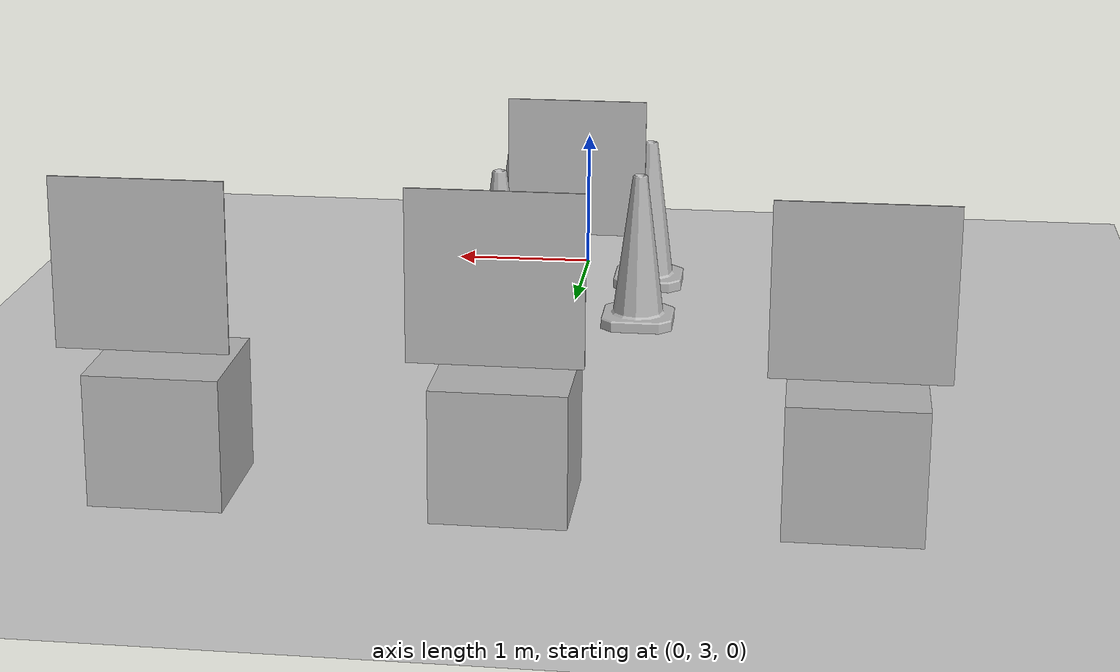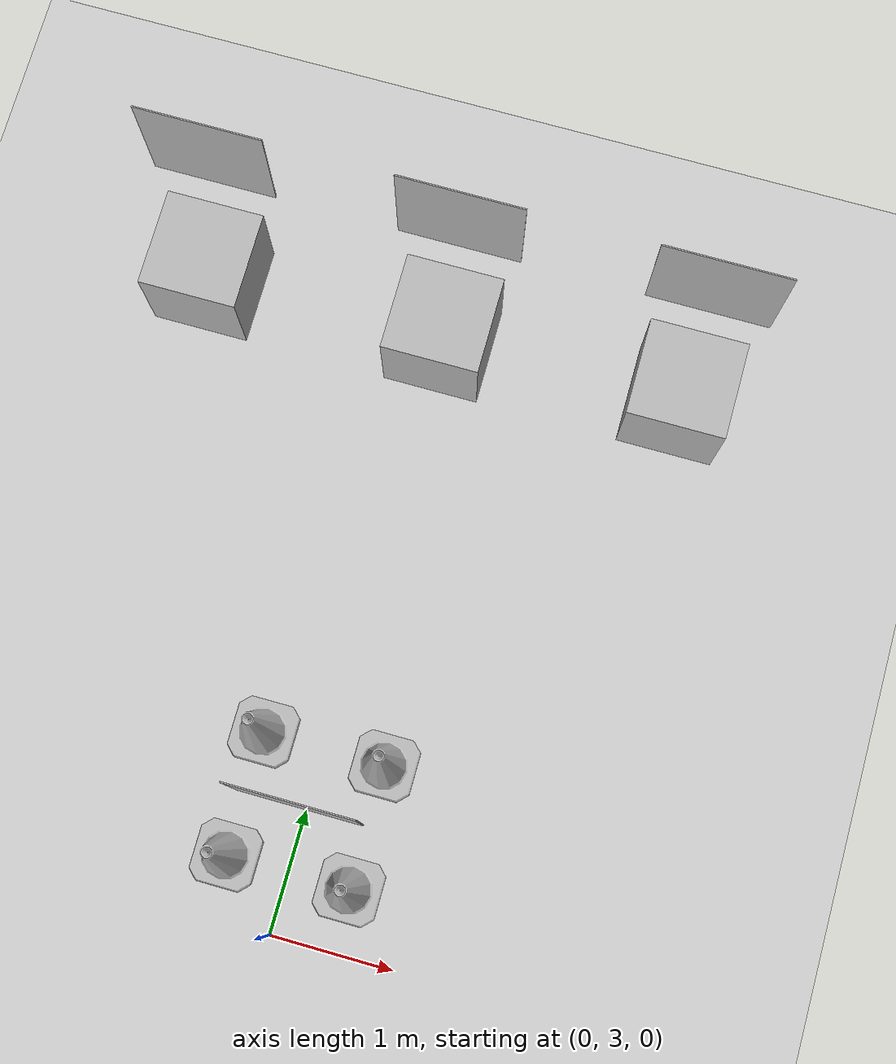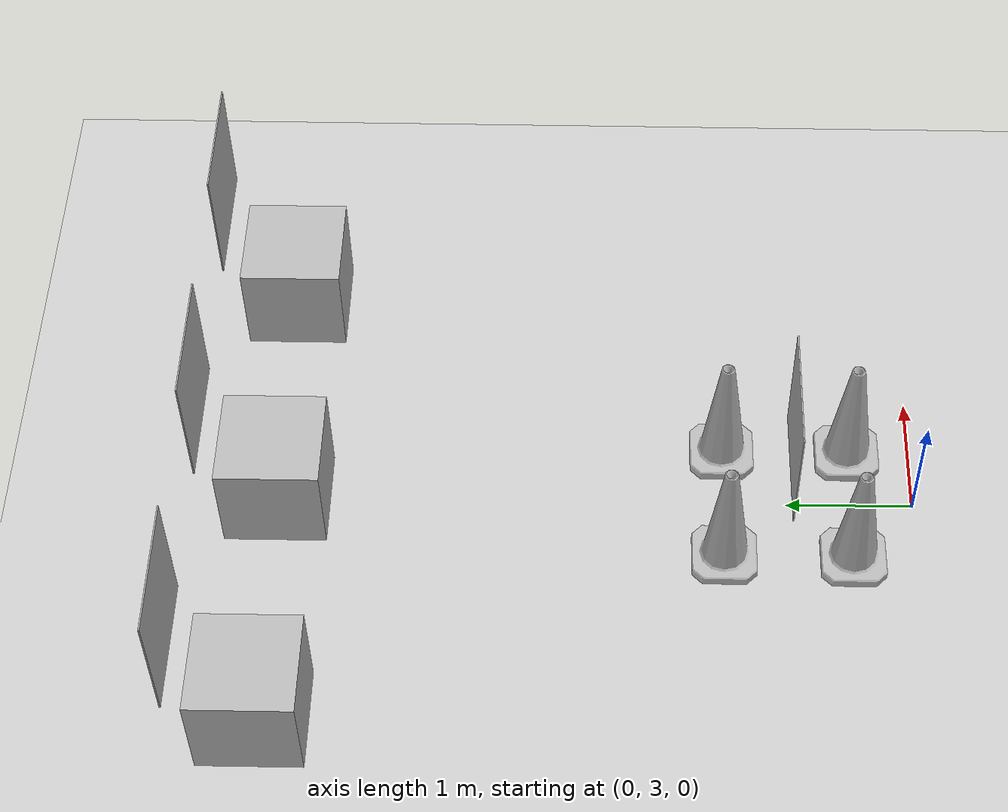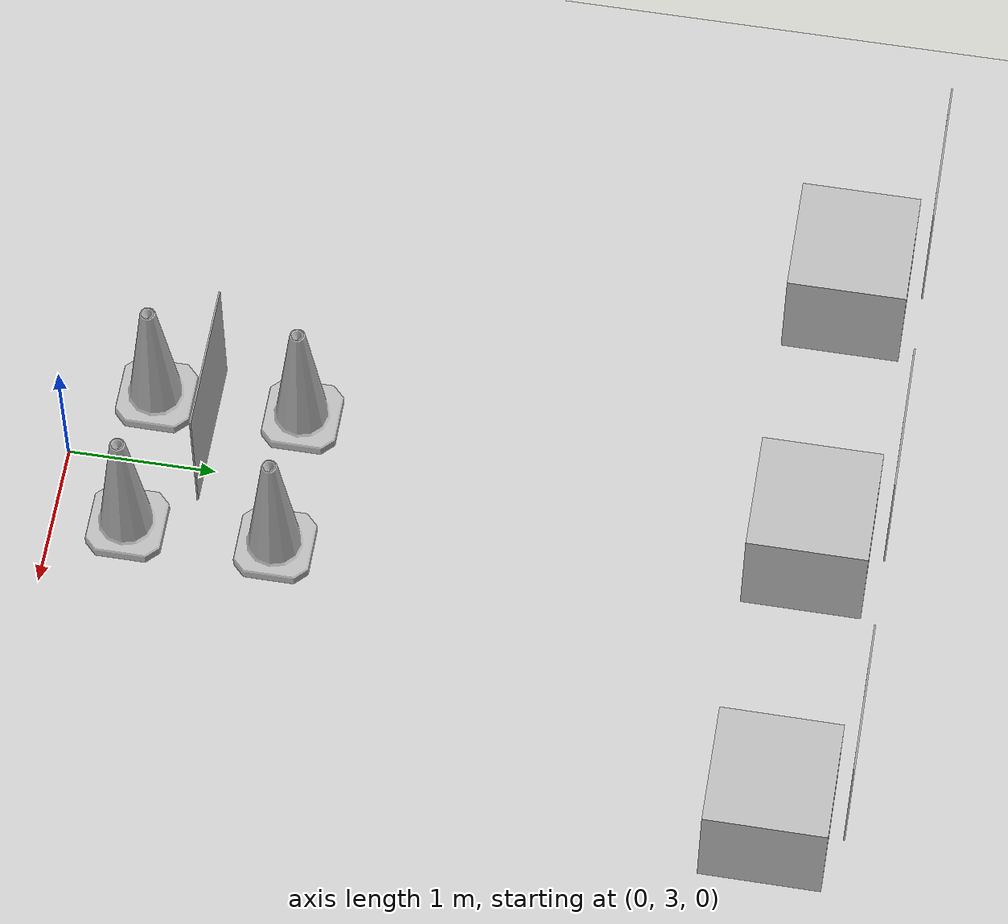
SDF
<sdf version="1.6">
 <world name="default">
  <light name="sun" type="directional">
   <pose>0 0 10 0 -0 0</pose>
   <diffuse>0.8 0.8 0.8 1</diffuse>
   <specular>0.2 0.2 0.2 1</specular>
   <attenuation>
    <range>1000</range>
    <constant>0.9</constant>
    <linear>0.01</linear>
    <quadratic>0.001</quadratic>
   </attenuation>
   <direction>-0.5 0.1 -0.9</direction>
  </light>
  <model name="ground_plane">
   <static>1</static>
   <link name="link">
    <collision name="collision">
     <geometry><plane><normal>0 0 1</normal><size>100 100</size></plane></geometry>
     <surface>
      <contact><collide_bitmask>65535</collide_bitmask></contact>
      <friction><ode><mu>100</mu><mu2>50</mu2></ode></friction>
     </surface>
    </collision>
    <visual name="visual">
     <cast_shadows>0</cast_shadows>
     <geometry><plane><normal>0 0 1</normal><size>100 100</size></plane></geometry>
     <material>
      <script><uri>file://media/materials/scripts/gazebo.material</uri><name>Gazebo/Grey</name></script>
     </material>
    </visual>
   </link>
  </model>
  <gravity>0 0 -9.8</gravity>
  <magnetic_field>6e-06 2.3e-05 -4.2e-05</magnetic_field>
  <atmosphere type="adiabatic"/>
  <physics name="default_physics" default="0" type="ode">
   <max_step_size>0.001</max_step_size>
   <real_time_factor>1</real_time_factor>
   <real_time_update_rate>1000</real_time_update_rate>
  </physics>
  <scene><ambient>0.4 0.4 0.4 1</ambient><background>0.7 0.7 0.7 1</background><shadows>1</shadows></scene>
  <audio><device>default</device></audio>
  <spherical_coordinates>
   <surface_model>EARTH_WGS84</surface_model>
   <latitude_deg>0</latitude_deg>
   <longitude_deg>0</longitude_deg>
   <elevation>0</elevation>
   <heading_deg>0</heading_deg>
  </spherical_coordinates>
  <model name="number1">
   <pose>2 8 0.4 0 -0 0</pose>
   <static>1</static>
   <link name="link">
    <visual name="visual">
     <geometry><mesh><uri>model://number1/meshes/number.dae</uri></mesh></geometry>
     <material>
      <script>
       <uri>model://number1/materials/scripts</uri>
       <uri>model://number1/materials/textures</uri>
       <name>Number/One</name>
      </script>
     </material>
    </visual>
   </link>
  </model>
  <model name="number3">
   <pose>-2 8 0.4 0 -0 0</pose>
   <static>1</static>
   <link name="link">
    <visual name="visual">
     <geometry><mesh><uri>model://number1/meshes/number.dae</uri></mesh></geometry>
     <material>
      <script>
       <uri>model://number3/materials/scripts</uri>
       <uri>model://number3/materials/textures</uri>
       <name>Number/Three</name>
      </script>
     </material>
    </visual>
   </link>
  </model>
  <model name="number2">
   <pose>0 8 0.4 0 -0 0</pose>
   <static>1</static>
   <link name="link">
    <visual name="visual">
     <geometry><mesh><uri>model://number1/meshes/number.dae</uri></mesh></geometry>
     <material>
      <script>
       <uri>model://number2/materials/scripts</uri>
       <uri>model://number2/materials/textures</uri>
       <name>Number/Two</name>
      </script>
     </material>
    </visual>
   </link>
  </model>
  <model name="Construction Cone">
   <link name="link">
    <collision name="collision">
     <geometry>
      <mesh><scale>10 10 10</scale><uri>model://construction_cone/meshes/construction_cone.dae</uri></mesh>
     </geometry>
    </collision>
    <visual name="visual">
     <geometry>
      <mesh><scale>10 10 10</scale><uri>model://construction_cone/meshes/construction_cone.dae</uri></mesh>
     </geometry>
    </visual>
    <inertial>
     <inertia><ixx>1</ixx><ixy>0</ixy><ixz>0</ixz><iyy>1</iyy><iyz>0</iyz><izz>1</izz></inertia>
     <mass>1</mass>
    </inertial>
   </link>
   <pose>0.5 4.5 -0 0 -0 0</pose>
  </model>
  <model name="Construction Cone_clone">
   <link name="link">
    <collision name="collision">
     <geometry>
      <mesh><scale>10 10 10</scale><uri>model://construction_cone/meshes/construction_cone.dae</uri></mesh>
     </geometry>
    </collision>
    <visual name="visual">
     <geometry>
      <mesh><scale>10 10 10</scale><uri>model://construction_cone/meshes/construction_cone.dae</uri></mesh>
     </geometry>
    </visual>
    <inertial>
     <inertia><ixx>1</ixx><ixy>0</ixy><ixz>0</ixz><iyy>1</iyy><iyz>0</iyz><izz>1</izz></inertia>
     <mass>1</mass>
    </inertial>
   </link>
   <pose>-0.5 4.5 -6e-06 -4e-06 0 0</pose>
  </model>
  <model name="Construction Cone_clone_0">
   <link name="link">
    <collision name="collision">
     <geometry>
      <mesh><scale>10 10 10</scale><uri>model://construction_cone/meshes/construction_cone.dae</uri></mesh>
     </geometry>
    </collision>
    <visual name="visual">
     <geometry>
      <mesh><scale>10 10 10</scale><uri>model://construction_cone/meshes/construction_cone.dae</uri></mesh>
     </geometry>
    </visual>
    <inertial>
     <inertia><ixx>1</ixx><ixy>0</ixy><ixz>0</ixz><iyy>1</iyy><iyz>0</iyz><izz>1</izz></inertia>
     <mass>1</mass>
    </inertial>
   </link>
   <pose>0.5 3.5 -0 0 -0 0</pose>
  </model>
  <model name="Construction Cone_clone_1">
   <link name="link">
    <collision name="collision">
     <geometry>
      <mesh><scale>10 10 10</scale><uri>model://construction_cone/meshes/construction_cone.dae</uri></mesh>
     </geometry>
    </collision>
    <visual name="visual">
     <geometry>
      <mesh><scale>10 10 10</scale><uri>model://construction_cone/meshes/construction_cone.dae</uri></mesh>
     </geometry>
    </visual>
    <inertial>
     <inertia><ixx>1</ixx><ixy>0</ixy><ixz>0</ixz><iyy>1</iyy><iyz>0</iyz><izz>1</izz></inertia>
     <mass>1</mass>
    </inertial>
   </link>
   <pose>-0.502991 3.49974 -1e-05 -1e-06 0 0</pose>
  </model>
  <model name="Apriltag36_11_00001">
   <link name="main">
    <visual name="main_Visual">
     <geometry><box><size>1 1 0.01</size></box></geometry>
     <material>
      <script>
       <uri>model://Apriltag36_11_00001/materials/scripts</uri>
       <uri>model://Apriltag36_11_00001/materials/textures</uri>
       <name>Apriltag36_11_00001</name>
      </script>
     </material>
    </visual>
   </link>
   <static>1</static>
   <pose>2 8.5 1.5 1.57 -0 0</pose>
  </model>
  <model name="Apriltag36_11_00002">
   <link name="main">
    <visual name="main_Visual">
     <geometry><box><size>1 1 0.01</size></box></geometry>
     <material>
      <script>
       <uri>model://Apriltag36_11_00002/materials/scripts</uri>
       <uri>model://Apriltag36_11_00002/materials/textures</uri>
       <name>Apriltag36_11_00002</name>
      </script>
     </material>
    </visual>
   </link>
   <static>1</static>
   <pose>0 8.5 1.5 1.57 -0 0</pose>
  </model>
  <model name="Apriltag36_11_00003">
   <link name="main">
    <visual name="main_Visual">
     <geometry><box><size>1 1 0.01</size></box></geometry>
     <material>
      <script>
       <uri>model://Apriltag36_11_00003/materials/scripts</uri>
       <uri>model://Apriltag36_11_00003/materials/textures</uri>
       <name>Apriltag36_11_00003</name>
      </script>
     </material>
    </visual>
   </link>
   <static>1</static>
   <pose>-2 8.5 1.5 1.57 -0 0</pose>
  </model>
  <model name="Apriltag36_11_00000">
   <link name="main">
    <visual name="main_Visual">
     <geometry><box><size>1 1 0.01</size></box></geometry>
     <material>
      <script>
       <uri>model://Apriltag36_11_00000/materials/scripts</uri>
       <uri>model://Apriltag36_11_00000/materials/textures</uri>
       <name>Apriltag36_11_00000</name>
      </script>
     </material>
    </visual>
   </link>
   <static>1</static>
   <pose>0 4 1 1.57 -0 0</pose>
  </model>
 </world>
</sdf>
